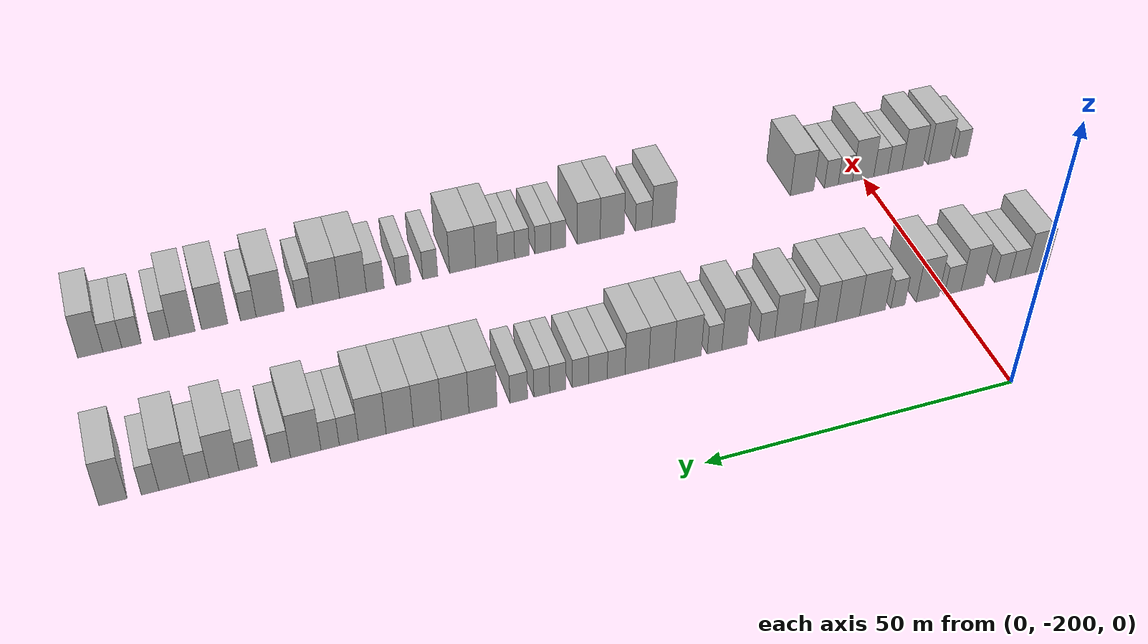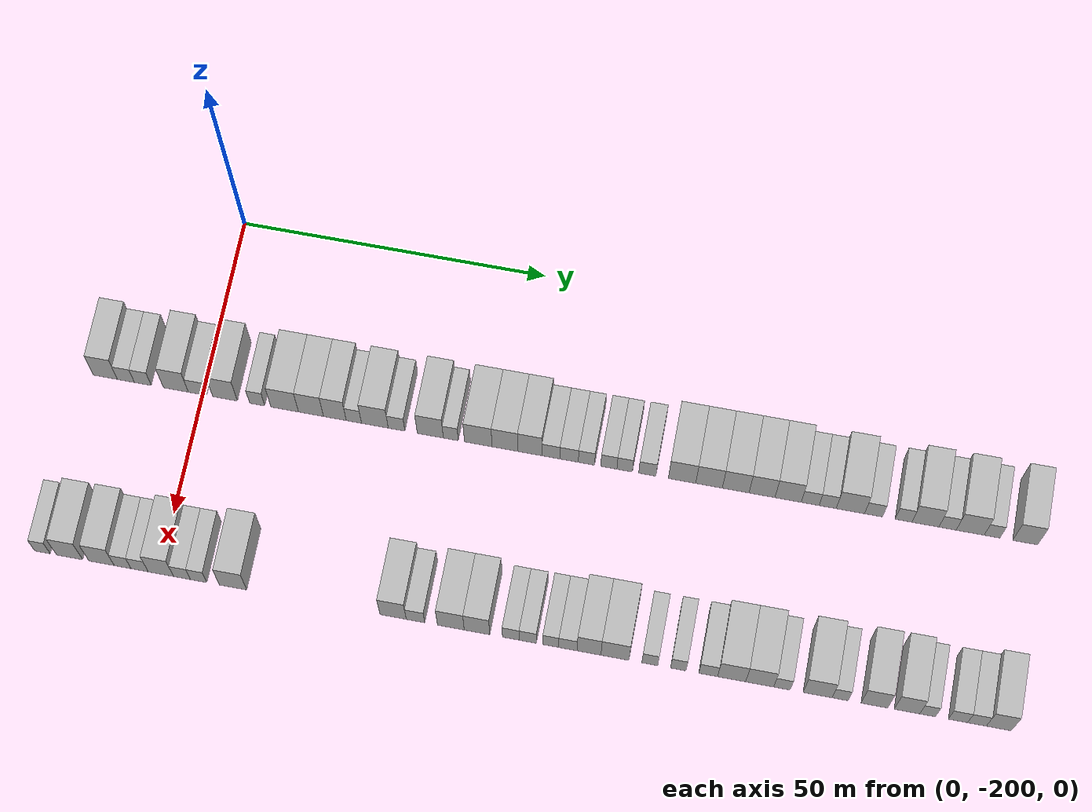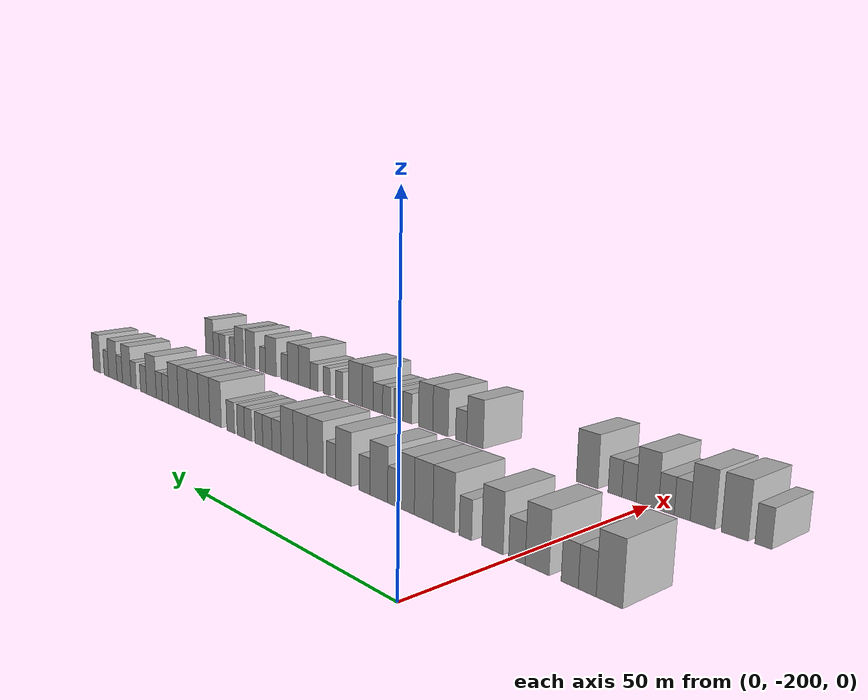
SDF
<sdf version="1.6">
 <world name="default">
  <model name="building_1">
   <static>1</static>
   <pose>25.0000 -216.0146 0 0.000000 0.000000 0.000000</pose>
   <link name="link">
    <pose>0 0 4.50 0 0 0</pose>
    <collision name="collision"><geometry><box><size>10.0000 3.9708 9.0000</size></box></geometry></collision>
    <visual name="visual">
     <cast_shadows>0</cast_shadows>
     <geometry><box><size>10.0000 3.9708 9.0000</size></box></geometry>
     <material>
      <script>
       <uri>model://HANNAS_wall/materials/scripts</uri>
       <uri>model://HANNAS_wall/materials/textures</uri>
       <name>vrc/HANNAS_wall</name>
      </script>
     </material>
    </visual>
   </link>
  </model>
  <model name="building_2">
   <static>1</static>
   <pose>25.0000 -212.6377 0 0.000000 0.000000 0.000000</pose>
   <link name="link">
    <pose>0 0 3.00 0 0 0</pose>
    <collision name="collision"><geometry><box><size>10.0000 2.7830 6.0000</size></box></geometry></collision>
    <visual name="visual">
     <cast_shadows>0</cast_shadows>
     <geometry><box><size>10.0000 2.7830 6.0000</size></box></geometry>
     <material>
      <script>
       <uri>model://HANNAS_wall/materials/scripts</uri>
       <uri>model://HANNAS_wall/materials/textures</uri>
       <name>vrc/HANNAS_wall</name>
      </script>
     </material>
    </visual>
   </link>
  </model>
  <model name="building_3">
   <static>1</static>
   <pose>25.0000 -209.8646 0 0.000000 0.000000 0.000000</pose>
   <link name="link">
    <pose>0 0 3.00 0 0 0</pose>
    <collision name="collision"><geometry><box><size>10.0000 2.7633 6.0000</size></box></geometry></collision>
    <visual name="visual">
     <cast_shadows>0</cast_shadows>
     <geometry><box><size>10.0000 2.7633 6.0000</size></box></geometry>
     <material>
      <script>
       <uri>model://HANNAS_wall/materials/scripts</uri>
       <uri>model://HANNAS_wall/materials/textures</uri>
       <name>vrc/HANNAS_wall</name>
      </script>
     </material>
    </visual>
   </link>
  </model>
  <model name="building_4">
   <static>1</static>
   <pose>25.0000 -204.4368 0 0.000000 0.000000 0.000000</pose>
   <link name="link">
    <pose>0 0 4.50 0 0 0</pose>
    <collision name="collision"><geometry><box><size>10.0000 4.0923 9.0000</size></box></geometry></collision>
    <visual name="visual">
     <cast_shadows>0</cast_shadows>
     <geometry><box><size>10.0000 4.0923 9.0000</size></box></geometry>
     <material>
      <script>
       <uri>model://HANNAS_wall/materials/scripts</uri>
       <uri>model://HANNAS_wall/materials/textures</uri>
       <name>vrc/HANNAS_wall</name>
      </script>
     </material>
    </visual>
   </link>
  </model>
  <model name="building_5">
   <static>1</static>
   <pose>25.0000 -200.8921 0 0.000000 0.000000 0.000000</pose>
   <link name="link">
    <pose>0 0 3.00 0 0 0</pose>
    <collision name="collision"><geometry><box><size>10.0000 2.9970 6.0000</size></box></geometry></collision>
    <visual name="visual">
     <cast_shadows>0</cast_shadows>
     <geometry><box><size>10.0000 2.9970 6.0000</size></box></geometry>
     <material>
      <script>
       <uri>model://HANNAS_wall/materials/scripts</uri>
       <uri>model://HANNAS_wall/materials/textures</uri>
       <name>vrc/HANNAS_wall</name>
      </script>
     </material>
    </visual>
   </link>
  </model>
  <model name="building_6">
   <static>1</static>
   <pose>25.0000 -196.3850 0 0.000000 0.000000 0.000000</pose>
   <link name="link">
    <pose>0 0 4.50 0 0 0</pose>
    <collision name="collision"><geometry><box><size>10.0000 4.0172 9.0000</size></box></geometry></collision>
    <visual name="visual">
     <cast_shadows>0</cast_shadows>
     <geometry><box><size>10.0000 4.0172 9.0000</size></box></geometry>
     <material>
      <script>
       <uri>model://HANNAS_wall/materials/scripts</uri>
       <uri>model://HANNAS_wall/materials/textures</uri>
       <name>vrc/HANNAS_wall</name>
      </script>
     </material>
    </visual>
   </link>
  </model>
  <model name="building_7">
   <static>1</static>
   <pose>25.0000 -191.1398 0 0.000000 0.000000 0.000000</pose>
   <link name="link">
    <pose>0 0 3.00 0 0 0</pose>
    <collision name="collision"><geometry><box><size>10.0000 2.4732 6.0000</size></box></geometry></collision>
    <visual name="visual">
     <cast_shadows>0</cast_shadows>
     <geometry><box><size>10.0000 2.4732 6.0000</size></box></geometry>
     <material>
      <script>
       <uri>model://HANNAS_wall/materials/scripts</uri>
       <uri>model://HANNAS_wall/materials/textures</uri>
       <name>vrc/HANNAS_wall</name>
      </script>
     </material>
    </visual>
   </link>
  </model>
  <model name="building_8">
   <static>1</static>
   <pose>25.0000 -186.6611 0 0.000000 0.000000 0.000000</pose>
   <link name="link">
    <pose>0 0 4.50 0 0 0</pose>
    <collision name="collision"><geometry><box><size>10.0000 4.4841 9.0000</size></box></geometry></collision>
    <visual name="visual">
     <cast_shadows>0</cast_shadows>
     <geometry><box><size>10.0000 4.4841 9.0000</size></box></geometry>
     <material>
      <script>
       <uri>model://HANNAS_wall/materials/scripts</uri>
       <uri>model://HANNAS_wall/materials/textures</uri>
       <name>vrc/HANNAS_wall</name>
      </script>
     </material>
    </visual>
   </link>
  </model>
  <model name="building_9">
   <static>1</static>
   <pose>25.0000 -182.3765 0 0.000000 0.000000 0.000000</pose>
   <link name="link">
    <pose>0 0 4.50 0 0 0</pose>
    <collision name="collision"><geometry><box><size>10.0000 4.0853 9.0000</size></box></geometry></collision>
    <visual name="visual">
     <cast_shadows>0</cast_shadows>
     <geometry><box><size>10.0000 4.0853 9.0000</size></box></geometry>
     <material>
      <script>
       <uri>model://HANNAS_wall/materials/scripts</uri>
       <uri>model://HANNAS_wall/materials/textures</uri>
       <name>vrc/HANNAS_wall</name>
      </script>
     </material>
    </visual>
   </link>
  </model>
  <model name="building_10">
   <static>1</static>
   <pose>25.0000 -178.4873 0 0.000000 0.000000 0.000000</pose>
   <link name="link">
    <pose>0 0 4.50 0 0 0</pose>
    <collision name="collision"><geometry><box><size>10.0000 3.6931 9.0000</size></box></geometry></collision>
    <visual name="visual">
     <cast_shadows>0</cast_shadows>
     <geometry><box><size>10.0000 3.6931 9.0000</size></box></geometry>
     <material>
      <script>
       <uri>model://HANNAS_wall/materials/scripts</uri>
       <uri>model://HANNAS_wall/materials/textures</uri>
       <name>vrc/HANNAS_wall</name>
      </script>
     </material>
    </visual>
   </link>
  </model>
  <model name="building_11">
   <static>1</static>
   <pose>25.0000 -175.4033 0 0.000000 0.000000 0.000000</pose>
   <link name="link">
    <pose>0 0 3.00 0 0 0</pose>
    <collision name="collision"><geometry><box><size>10.0000 2.4749 6.0000</size></box></geometry></collision>
    <visual name="visual">
     <cast_shadows>0</cast_shadows>
     <geometry><box><size>10.0000 2.4749 6.0000</size></box></geometry>
     <material>
      <script>
       <uri>model://HANNAS_wall/materials/scripts</uri>
       <uri>model://HANNAS_wall/materials/textures</uri>
       <name>vrc/HANNAS_wall</name>
      </script>
     </material>
    </visual>
   </link>
  </model>
  <model name="building_12">
   <static>1</static>
   <pose>25.0000 -171.9986 0 0.000000 0.000000 0.000000</pose>
   <link name="link">
    <pose>0 0 4.50 0 0 0</pose>
    <collision name="collision"><geometry><box><size>10.0000 4.3345 9.0000</size></box></geometry></collision>
    <visual name="visual">
     <cast_shadows>0</cast_shadows>
     <geometry><box><size>10.0000 4.3345 9.0000</size></box></geometry>
     <material>
      <script>
       <uri>model://HANNAS_wall/materials/scripts</uri>
       <uri>model://HANNAS_wall/materials/textures</uri>
       <name>vrc/HANNAS_wall</name>
      </script>
     </material>
    </visual>
   </link>
  </model>
  <model name="building_13">
   <static>1</static>
   <pose>25.0000 -168.4795 0 0.000000 0.000000 0.000000</pose>
   <link name="link">
    <pose>0 0 3.00 0 0 0</pose>
    <collision name="collision"><geometry><box><size>10.0000 2.7037 6.0000</size></box></geometry></collision>
    <visual name="visual">
     <cast_shadows>0</cast_shadows>
     <geometry><box><size>10.0000 2.7037 6.0000</size></box></geometry>
     <material>
      <script>
       <uri>model://HANNAS_wall/materials/scripts</uri>
       <uri>model://HANNAS_wall/materials/textures</uri>
       <name>vrc/HANNAS_wall</name>
      </script>
     </material>
    </visual>
   </link>
  </model>
  <model name="building_14">
   <static>1</static>
   <pose>25.0000 -163.0207 0 0.000000 0.000000 0.000000</pose>
   <link name="link">
    <pose>0 0 4.50 0 0 0</pose>
    <collision name="collision"><geometry><box><size>10.0000 4.2139 9.0000</size></box></geometry></collision>
    <visual name="visual">
     <cast_shadows>0</cast_shadows>
     <geometry><box><size>10.0000 4.2139 9.0000</size></box></geometry>
     <material>
      <script>
       <uri>model://HANNAS_wall/materials/scripts</uri>
       <uri>model://HANNAS_wall/materials/textures</uri>
       <name>vrc/HANNAS_wall</name>
      </script>
     </material>
    </visual>
   </link>
  </model>
  <model name="building_15">
   <static>1</static>
   <pose>25.0000 -159.7039 0 0.000000 0.000000 0.000000</pose>
   <link name="link">
    <pose>0 0 3.00 0 0 0</pose>
    <collision name="collision"><geometry><box><size>10.0000 2.4196 6.0000</size></box></geometry></collision>
    <visual name="visual">
     <cast_shadows>0</cast_shadows>
     <geometry><box><size>10.0000 2.4196 6.0000</size></box></geometry>
     <material>
      <script>
       <uri>model://HANNAS_wall/materials/scripts</uri>
       <uri>model://HANNAS_wall/materials/textures</uri>
       <name>vrc/HANNAS_wall</name>
      </script>
     </material>
    </visual>
   </link>
  </model>
  <model name="building_16">
   <static>1</static>
   <pose>25.0000 -155.2690 0 0.000000 0.000000 0.000000</pose>
   <link name="link">
    <pose>0 0 4.50 0 0 0</pose>
    <collision name="collision"><geometry><box><size>10.0000 4.4502 9.0000</size></box></geometry></collision>
    <visual name="visual">
     <cast_shadows>0</cast_shadows>
     <geometry><box><size>10.0000 4.4502 9.0000</size></box></geometry>
     <material>
      <script>
       <uri>model://HANNAS_wall/materials/scripts</uri>
       <uri>model://HANNAS_wall/materials/textures</uri>
       <name>vrc/HANNAS_wall</name>
      </script>
     </material>
    </visual>
   </link>
  </model>
  <model name="building_17">
   <static>1</static>
   <pose>25.0000 -150.9616 0 0.000000 0.000000 0.000000</pose>
   <link name="link">
    <pose>0 0 4.50 0 0 0</pose>
    <collision name="collision"><geometry><box><size>10.0000 4.1646 9.0000</size></box></geometry></collision>
    <visual name="visual">
     <cast_shadows>0</cast_shadows>
     <geometry><box><size>10.0000 4.1646 9.0000</size></box></geometry>
     <material>
      <script>
       <uri>model://HANNAS_wall/materials/scripts</uri>
       <uri>model://HANNAS_wall/materials/textures</uri>
       <name>vrc/HANNAS_wall</name>
      </script>
     </material>
    </visual>
   </link>
  </model>
  <model name="building_18">
   <static>1</static>
   <pose>25.0000 -146.9470 0 0.000000 0.000000 0.000000</pose>
   <link name="link">
    <pose>0 0 4.50 0 0 0</pose>
    <collision name="collision"><geometry><box><size>10.0000 3.8646 9.0000</size></box></geometry></collision>
    <visual name="visual">
     <cast_shadows>0</cast_shadows>
     <geometry><box><size>10.0000 3.8646 9.0000</size></box></geometry>
     <material>
      <script>
       <uri>model://HANNAS_wall/materials/scripts</uri>
       <uri>model://HANNAS_wall/materials/textures</uri>
       <name>vrc/HANNAS_wall</name>
      </script>
     </material>
    </visual>
   </link>
  </model>
  <model name="building_19">
   <static>1</static>
   <pose>25.0000 -143.5795 0 0.000000 0.000000 0.000000</pose>
   <link name="link">
    <pose>0 0 3.00 0 0 0</pose>
    <collision name="collision"><geometry><box><size>10.0000 2.8704 6.0000</size></box></geometry></collision>
    <visual name="visual">
     <cast_shadows>0</cast_shadows>
     <geometry><box><size>10.0000 2.8704 6.0000</size></box></geometry>
     <material>
      <script>
       <uri>model://HANNAS_wall/materials/scripts</uri>
       <uri>model://HANNAS_wall/materials/textures</uri>
       <name>vrc/HANNAS_wall</name>
      </script>
     </material>
    </visual>
   </link>
  </model>
  <model name="building_20">
   <static>1</static>
   <pose>25.0000 -140.6475 0 0.000000 0.000000 0.000000</pose>
   <link name="link">
    <pose>0 0 3.00 0 0 0</pose>
    <collision name="collision"><geometry><box><size>10.0000 2.9938 6.0000</size></box></geometry></collision>
    <visual name="visual">
     <cast_shadows>0</cast_shadows>
     <geometry><box><size>10.0000 2.9938 6.0000</size></box></geometry>
     <material>
      <script>
       <uri>model://HANNAS_wall/materials/scripts</uri>
       <uri>model://HANNAS_wall/materials/textures</uri>
       <name>vrc/HANNAS_wall</name>
      </script>
     </material>
    </visual>
   </link>
  </model>
  <model name="building_21">
   <static>1</static>
   <pose>25.0000 -137.8461 0 0.000000 0.000000 0.000000</pose>
   <link name="link">
    <pose>0 0 3.00 0 0 0</pose>
    <collision name="collision"><geometry><box><size>10.0000 2.6090 6.0000</size></box></geometry></collision>
    <visual name="visual">
     <cast_shadows>0</cast_shadows>
     <geometry><box><size>10.0000 2.6090 6.0000</size></box></geometry>
     <material>
      <script>
       <uri>model://HANNAS_wall/materials/scripts</uri>
       <uri>model://HANNAS_wall/materials/textures</uri>
       <name>vrc/HANNAS_wall</name>
      </script>
     </material>
    </visual>
   </link>
  </model>
  <model name="building_22">
   <static>1</static>
   <pose>25.0000 -134.2473 0 0.000000 0.000000 0.000000</pose>
   <link name="link">
    <pose>0 0 3.00 0 0 0</pose>
    <collision name="collision"><geometry><box><size>10.0000 2.5884 6.0000</size></box></geometry></collision>
    <visual name="visual">
     <cast_shadows>0</cast_shadows>
     <geometry><box><size>10.0000 2.5884 6.0000</size></box></geometry>
     <material>
      <script>
       <uri>model://HANNAS_wall/materials/scripts</uri>
       <uri>model://HANNAS_wall/materials/textures</uri>
       <name>vrc/HANNAS_wall</name>
      </script>
     </material>
    </visual>
   </link>
  </model>
  <model name="building_23">
   <static>1</static>
   <pose>25.0000 -131.7096 0 0.000000 0.000000 0.000000</pose>
   <link name="link">
    <pose>0 0 3.00 0 0 0</pose>
    <collision name="collision"><geometry><box><size>10.0000 2.4871 6.0000</size></box></geometry></collision>
    <visual name="visual">
     <cast_shadows>0</cast_shadows>
     <geometry><box><size>10.0000 2.4871 6.0000</size></box></geometry>
     <material>
      <script>
       <uri>model://HANNAS_wall/materials/scripts</uri>
       <uri>model://HANNAS_wall/materials/textures</uri>
       <name>vrc/HANNAS_wall</name>
      </script>
     </material>
    </visual>
   </link>
  </model>
  <model name="building_24">
   <static>1</static>
   <pose>25.0000 -128.0845 0 0.000000 0.000000 0.000000</pose>
   <link name="link">
    <pose>0 0 3.00 0 0 0</pose>
    <collision name="collision"><geometry><box><size>10.0000 2.7631 6.0000</size></box></geometry></collision>
    <visual name="visual">
     <cast_shadows>0</cast_shadows>
     <geometry><box><size>10.0000 2.7631 6.0000</size></box></geometry>
     <material>
      <script>
       <uri>model://HANNAS_wall/materials/scripts</uri>
       <uri>model://HANNAS_wall/materials/textures</uri>
       <name>vrc/HANNAS_wall</name>
      </script>
     </material>
    </visual>
   </link>
  </model>
  <model name="building_25">
   <static>1</static>
   <pose>25.0000 -122.5178 0 0.000000 0.000000 0.000000</pose>
   <link name="link">
    <pose>0 0 4.50 0 0 0</pose>
    <collision name="collision"><geometry><box><size>10.0000 4.3704 9.0000</size></box></geometry></collision>
    <visual name="visual">
     <cast_shadows>0</cast_shadows>
     <geometry><box><size>10.0000 4.3704 9.0000</size></box></geometry>
     <material>
      <script>
       <uri>model://HANNAS_wall/materials/scripts</uri>
       <uri>model://HANNAS_wall/materials/textures</uri>
       <name>vrc/HANNAS_wall</name>
      </script>
     </material>
    </visual>
   </link>
  </model>
  <model name="building_26">
   <static>1</static>
   <pose>25.0000 -118.2107 0 0.000000 0.000000 0.000000</pose>
   <link name="link">
    <pose>0 0 4.50 0 0 0</pose>
    <collision name="collision"><geometry><box><size>10.0000 4.2439 9.0000</size></box></geometry></collision>
    <visual name="visual">
     <cast_shadows>0</cast_shadows>
     <geometry><box><size>10.0000 4.2439 9.0000</size></box></geometry>
     <material>
      <script>
       <uri>model://HANNAS_wall/materials/scripts</uri>
       <uri>model://HANNAS_wall/materials/textures</uri>
       <name>vrc/HANNAS_wall</name>
      </script>
     </material>
    </visual>
   </link>
  </model>
  <model name="building_27">
   <static>1</static>
   <pose>25.0000 -113.9606 0 0.000000 0.000000 0.000000</pose>
   <link name="link">
    <pose>0 0 4.50 0 0 0</pose>
    <collision name="collision"><geometry><box><size>10.0000 4.2562 9.0000</size></box></geometry></collision>
    <visual name="visual">
     <cast_shadows>0</cast_shadows>
     <geometry><box><size>10.0000 4.2562 9.0000</size></box></geometry>
     <material>
      <script>
       <uri>model://HANNAS_wall/materials/scripts</uri>
       <uri>model://HANNAS_wall/materials/textures</uri>
       <name>vrc/HANNAS_wall</name>
      </script>
     </material>
    </visual>
   </link>
  </model>
  <model name="building_28">
   <static>1</static>
   <pose>25.0000 -109.7631 0 0.000000 0.000000 0.000000</pose>
   <link name="link">
    <pose>0 0 4.50 0 0 0</pose>
    <collision name="collision"><geometry><box><size>10.0000 4.1390 9.0000</size></box></geometry></collision>
    <visual name="visual">
     <cast_shadows>0</cast_shadows>
     <geometry><box><size>10.0000 4.1390 9.0000</size></box></geometry>
     <material>
      <script>
       <uri>model://HANNAS_wall/materials/scripts</uri>
       <uri>model://HANNAS_wall/materials/textures</uri>
       <name>vrc/HANNAS_wall</name>
      </script>
     </material>
    </visual>
   </link>
  </model>
  <model name="building_29">
   <static>1</static>
   <pose>25.0000 -105.6011 0 0.000000 0.000000 0.000000</pose>
   <link name="link">
    <pose>0 0 4.50 0 0 0</pose>
    <collision name="collision"><geometry><box><size>10.0000 4.1851 9.0000</size></box></geometry></collision>
    <visual name="visual">
     <cast_shadows>0</cast_shadows>
     <geometry><box><size>10.0000 4.1851 9.0000</size></box></geometry>
     <material>
      <script>
       <uri>model://HANNAS_wall/materials/scripts</uri>
       <uri>model://HANNAS_wall/materials/textures</uri>
       <name>vrc/HANNAS_wall</name>
      </script>
     </material>
    </visual>
   </link>
  </model>
  <model name="building_30">
   <static>1</static>
   <pose>25.0000 -102.0869 0 0.000000 0.000000 0.000000</pose>
   <link name="link">
    <pose>0 0 3.00 0 0 0</pose>
    <collision name="collision"><geometry><box><size>10.0000 2.8432 6.0000</size></box></geometry></collision>
    <visual name="visual">
     <cast_shadows>0</cast_shadows>
     <geometry><box><size>10.0000 2.8432 6.0000</size></box></geometry>
     <material>
      <script>
       <uri>model://HANNAS_wall/materials/scripts</uri>
       <uri>model://HANNAS_wall/materials/textures</uri>
       <name>vrc/HANNAS_wall</name>
      </script>
     </material>
    </visual>
   </link>
  </model>
  <model name="building_31">
   <static>1</static>
   <pose>25.0000 -99.3098 0 0.000000 0.000000 0.000000</pose>
   <link name="link">
    <pose>0 0 3.00 0 0 0</pose>
    <collision name="collision"><geometry><box><size>10.0000 2.7112 6.0000</size></box></geometry></collision>
    <visual name="visual">
     <cast_shadows>0</cast_shadows>
     <geometry><box><size>10.0000 2.7112 6.0000</size></box></geometry>
     <material>
      <script>
       <uri>model://HANNAS_wall/materials/scripts</uri>
       <uri>model://HANNAS_wall/materials/textures</uri>
       <name>vrc/HANNAS_wall</name>
      </script>
     </material>
    </visual>
   </link>
  </model>
  <model name="building_32">
   <static>1</static>
   <pose>25.0000 -95.7059 0 0.000000 0.000000 0.000000</pose>
   <link name="link">
    <pose>0 0 4.50 0 0 0</pose>
    <collision name="collision"><geometry><box><size>10.0000 4.4965 9.0000</size></box></geometry></collision>
    <visual name="visual">
     <cast_shadows>0</cast_shadows>
     <geometry><box><size>10.0000 4.4965 9.0000</size></box></geometry>
     <material>
      <script>
       <uri>model://HANNAS_wall/materials/scripts</uri>
       <uri>model://HANNAS_wall/materials/textures</uri>
       <name>vrc/HANNAS_wall</name>
      </script>
     </material>
    </visual>
   </link>
  </model>
  <model name="building_33">
   <static>1</static>
   <pose>25.0000 -92.0292 0 0.000000 0.000000 0.000000</pose>
   <link name="link">
    <pose>0 0 3.00 0 0 0</pose>
    <collision name="collision"><geometry><box><size>10.0000 2.8569 6.0000</size></box></geometry></collision>
    <visual name="visual">
     <cast_shadows>0</cast_shadows>
     <geometry><box><size>10.0000 2.8569 6.0000</size></box></geometry>
     <material>
      <script>
       <uri>model://HANNAS_wall/materials/scripts</uri>
       <uri>model://HANNAS_wall/materials/textures</uri>
       <name>vrc/HANNAS_wall</name>
      </script>
     </material>
    </visual>
   </link>
  </model>
  <model name="building_34">
   <static>1</static>
   <pose>25.0000 -87.2775 0 0.000000 0.000000 0.000000</pose>
   <link name="link">
    <pose>0 0 3.00 0 0 0</pose>
    <collision name="collision"><geometry><box><size>10.0000 2.6465 6.0000</size></box></geometry></collision>
    <visual name="visual">
     <cast_shadows>0</cast_shadows>
     <geometry><box><size>10.0000 2.6465 6.0000</size></box></geometry>
     <material>
      <script>
       <uri>model://HANNAS_wall/materials/scripts</uri>
       <uri>model://HANNAS_wall/materials/textures</uri>
       <name>vrc/HANNAS_wall</name>
      </script>
     </material>
    </visual>
   </link>
  </model>
  <model name="building_35">
   <static>1</static>
   <pose>25.0000 -83.8071 0 0.000000 0.000000 0.000000</pose>
   <link name="link">
    <pose>0 0 4.50 0 0 0</pose>
    <collision name="collision"><geometry><box><size>10.0000 4.2943 9.0000</size></box></geometry></collision>
    <visual name="visual">
     <cast_shadows>0</cast_shadows>
     <geometry><box><size>10.0000 4.2943 9.0000</size></box></geometry>
     <material>
      <script>
       <uri>model://HANNAS_wall/materials/scripts</uri>
       <uri>model://HANNAS_wall/materials/textures</uri>
       <name>vrc/HANNAS_wall</name>
      </script>
     </material>
    </visual>
   </link>
  </model>
  <model name="building_36">
   <static>1</static>
   <pose>25.0000 -80.2957 0 0.000000 0.000000 0.000000</pose>
   <link name="link">
    <pose>0 0 3.00 0 0 0</pose>
    <collision name="collision"><geometry><box><size>10.0000 2.7285 6.0000</size></box></geometry></collision>
    <visual name="visual">
     <cast_shadows>0</cast_shadows>
     <geometry><box><size>10.0000 2.7285 6.0000</size></box></geometry>
     <material>
      <script>
       <uri>model://HANNAS_wall/materials/scripts</uri>
       <uri>model://HANNAS_wall/materials/textures</uri>
       <name>vrc/HANNAS_wall</name>
      </script>
     </material>
    </visual>
   </link>
  </model>
  <model name="building_37">
   <static>1</static>
   <pose>25.0000 -76.7202 0 0.000000 0.000000 0.000000</pose>
   <link name="link">
    <pose>0 0 4.50 0 0 0</pose>
    <collision name="collision"><geometry><box><size>10.0000 4.4225 9.0000</size></box></geometry></collision>
    <visual name="visual">
     <cast_shadows>0</cast_shadows>
     <geometry><box><size>10.0000 4.4225 9.0000</size></box></geometry>
     <material>
      <script>
       <uri>model://HANNAS_wall/materials/scripts</uri>
       <uri>model://HANNAS_wall/materials/textures</uri>
       <name>vrc/HANNAS_wall</name>
      </script>
     </material>
    </visual>
   </link>
  </model>
  <model name="building_38">
   <static>1</static>
   <pose>25.0000 -73.2671 0 0.000000 0.000000 0.000000</pose>
   <link name="link">
    <pose>0 0 3.00 0 0 0</pose>
    <collision name="collision"><geometry><box><size>10.0000 2.4837 6.0000</size></box></geometry></collision>
    <visual name="visual">
     <cast_shadows>0</cast_shadows>
     <geometry><box><size>10.0000 2.4837 6.0000</size></box></geometry>
     <material>
      <script>
       <uri>model://HANNAS_wall/materials/scripts</uri>
       <uri>model://HANNAS_wall/materials/textures</uri>
       <name>vrc/HANNAS_wall</name>
      </script>
     </material>
    </visual>
   </link>
  </model>
  <model name="building_39">
   <static>1</static>
   <pose>25.0000 -68.0515 0 0.000000 0.000000 0.000000</pose>
   <link name="link">
    <pose>0 0 4.50 0 0 0</pose>
    <collision name="collision"><geometry><box><size>10.0000 3.9476 9.0000</size></box></geometry></collision>
    <visual name="visual">
     <cast_shadows>0</cast_shadows>
     <geometry><box><size>10.0000 3.9476 9.0000</size></box></geometry>
     <material>
      <script>
       <uri>model://HANNAS_wall/materials/scripts</uri>
       <uri>model://HANNAS_wall/materials/textures</uri>
       <name>vrc/HANNAS_wall</name>
      </script>
     </material>
    </visual>
   </link>
  </model>
  <model name="building_112">
   <static>1</static>
   <pose>55.0000 -218.7478 0 0.000000 0.000000 0.000000</pose>
   <link name="link">
    <pose>0 0 3.00 0 0 0</pose>
    <collision name="collision"><geometry><box><size>10.0000 2.5045 6.0000</size></box></geometry></collision>
    <visual name="visual">
     <cast_shadows>0</cast_shadows>
     <geometry><box><size>10.0000 2.5045 6.0000</size></box></geometry>
     <material>
      <script>
       <uri>model://HANNAS_wall/materials/scripts</uri>
       <uri>model://HANNAS_wall/materials/textures</uri>
       <name>vrc/HANNAS_wall</name>
      </script>
     </material>
    </visual>
   </link>
  </model>
  <model name="building_113">
   <static>1</static>
   <pose>55.0000 -214.3960 0 0.000000 0.000000 0.000000</pose>
   <link name="link">
    <pose>0 0 4.50 0 0 0</pose>
    <collision name="collision"><geometry><box><size>10.0000 4.1990 9.0000</size></box></geometry></collision>
    <visual name="visual">
     <cast_shadows>0</cast_shadows>
     <geometry><box><size>10.0000 4.1990 9.0000</size></box></geometry>
     <material>
      <script>
       <uri>model://HANNAS_wall/materials/scripts</uri>
       <uri>model://HANNAS_wall/materials/textures</uri>
       <name>vrc/HANNAS_wall</name>
      </script>
     </material>
    </visual>
   </link>
  </model>
  <model name="building_114">
   <static>1</static>
   <pose>55.0000 -209.2582 0 0.000000 0.000000 0.000000</pose>
   <link name="link">
    <pose>0 0 4.50 0 0 0</pose>
    <collision name="collision"><geometry><box><size>10.0000 4.0765 9.0000</size></box></geometry></collision>
    <visual name="visual">
     <cast_shadows>0</cast_shadows>
     <geometry><box><size>10.0000 4.0765 9.0000</size></box></geometry>
     <material>
      <script>
       <uri>model://HANNAS_wall/materials/scripts</uri>
       <uri>model://HANNAS_wall/materials/textures</uri>
       <name>vrc/HANNAS_wall</name>
      </script>
     </material>
    </visual>
   </link>
  </model>
  <model name="building_115">
   <static>1</static>
   <pose>55.0000 -205.8682 0 0.000000 0.000000 0.000000</pose>
   <link name="link">
    <pose>0 0 3.00 0 0 0</pose>
    <collision name="collision"><geometry><box><size>10.0000 2.7035 6.0000</size></box></geometry></collision>
    <visual name="visual">
     <cast_shadows>0</cast_shadows>
     <geometry><box><size>10.0000 2.7035 6.0000</size></box></geometry>
     <material>
      <script>
       <uri>model://HANNAS_wall/materials/scripts</uri>
       <uri>model://HANNAS_wall/materials/textures</uri>
       <name>vrc/HANNAS_wall</name>
      </script>
     </material>
    </visual>
   </link>
  </model>
  <model name="building_116">
   <static>1</static>
   <pose>55.0000 -203.1440 0 0.000000 0.000000 0.000000</pose>
   <link name="link">
    <pose>0 0 3.00 0 0 0</pose>
    <collision name="collision"><geometry><box><size>10.0000 2.7449 6.0000</size></box></geometry></collision>
    <visual name="visual">
     <cast_shadows>0</cast_shadows>
     <geometry><box><size>10.0000 2.7449 6.0000</size></box></geometry>
     <material>
      <script>
       <uri>model://HANNAS_wall/materials/scripts</uri>
       <uri>model://HANNAS_wall/materials/textures</uri>
       <name>vrc/HANNAS_wall</name>
      </script>
     </material>
    </visual>
   </link>
  </model>
  <model name="building_117">
   <static>1</static>
   <pose>55.0000 -199.7453 0 0.000000 0.000000 0.000000</pose>
   <link name="link">
    <pose>0 0 4.50 0 0 0</pose>
    <collision name="collision"><geometry><box><size>10.0000 4.0525 9.0000</size></box></geometry></collision>
    <visual name="visual">
     <cast_shadows>0</cast_shadows>
     <geometry><box><size>10.0000 4.0525 9.0000</size></box></geometry>
     <material>
      <script>
       <uri>model://HANNAS_wall/materials/scripts</uri>
       <uri>model://HANNAS_wall/materials/textures</uri>
       <name>vrc/HANNAS_wall</name>
      </script>
     </material>
    </visual>
   </link>
  </model>
  <model name="building_118">
   <static>1</static>
   <pose>55.0000 -196.3720 0 0.000000 0.000000 0.000000</pose>
   <link name="link">
    <pose>0 0 3.00 0 0 0</pose>
    <collision name="collision"><geometry><box><size>10.0000 2.6942 6.0000</size></box></geometry></collision>
    <visual name="visual">
     <cast_shadows>0</cast_shadows>
     <geometry><box><size>10.0000 2.6942 6.0000</size></box></geometry>
     <material>
      <script>
       <uri>model://HANNAS_wall/materials/scripts</uri>
       <uri>model://HANNAS_wall/materials/textures</uri>
       <name>vrc/HANNAS_wall</name>
      </script>
     </material>
    </visual>
   </link>
  </model>
  <model name="building_119">
   <static>1</static>
   <pose>55.0000 -193.7164 0 0.000000 0.000000 0.000000</pose>
   <link name="link">
    <pose>0 0 3.00 0 0 0</pose>
    <collision name="collision"><geometry><box><size>10.0000 2.6168 6.0000</size></box></geometry></collision>
    <visual name="visual">
     <cast_shadows>0</cast_shadows>
     <geometry><box><size>10.0000 2.6168 6.0000</size></box></geometry>
     <material>
      <script>
       <uri>model://HANNAS_wall/materials/scripts</uri>
       <uri>model://HANNAS_wall/materials/textures</uri>
       <name>vrc/HANNAS_wall</name>
      </script>
     </material>
    </visual>
   </link>
  </model>
  <model name="building_120">
   <static>1</static>
   <pose>55.0000 -188.2296 0 0.000000 0.000000 0.000000</pose>
   <link name="link">
    <pose>0 0 4.50 0 0 0</pose>
    <collision name="collision"><geometry><box><size>10.0000 4.3569 9.0000</size></box></geometry></collision>
    <visual name="visual">
     <cast_shadows>0</cast_shadows>
     <geometry><box><size>10.0000 4.3569 9.0000</size></box></geometry>
     <material>
      <script>
       <uri>model://HANNAS_wall/materials/scripts</uri>
       <uri>model://HANNAS_wall/materials/textures</uri>
       <name>vrc/HANNAS_wall</name>
      </script>
     </material>
    </visual>
   </link>
  </model>
  <model name="building_121">
   <static>1</static>
   <pose>55.0000 -162.8104 0 0.000000 0.000000 0.000000</pose>
   <link name="link">
    <pose>0 0 4.50 0 0 0</pose>
    <collision name="collision"><geometry><box><size>10.0000 4.1604 9.0000</size></box></geometry></collision>
    <visual name="visual">
     <cast_shadows>0</cast_shadows>
     <geometry><box><size>10.0000 4.1604 9.0000</size></box></geometry>
     <material>
      <script>
       <uri>model://HANNAS_wall/materials/scripts</uri>
       <uri>model://HANNAS_wall/materials/textures</uri>
       <name>vrc/HANNAS_wall</name>
      </script>
     </material>
    </visual>
   </link>
  </model>
  <model name="building_122">
   <static>1</static>
   <pose>55.0000 -159.2647 0 0.000000 0.000000 0.000000</pose>
   <link name="link">
    <pose>0 0 3.00 0 0 0</pose>
    <collision name="collision"><geometry><box><size>10.0000 2.9310 6.0000</size></box></geometry></collision>
    <visual name="visual">
     <cast_shadows>0</cast_shadows>
     <geometry><box><size>10.0000 2.9310 6.0000</size></box></geometry>
     <material>
      <script>
       <uri>model://HANNAS_wall/materials/scripts</uri>
       <uri>model://HANNAS_wall/materials/textures</uri>
       <name>vrc/HANNAS_wall</name>
      </script>
     </material>
    </visual>
   </link>
  </model>
  <model name="building_123">
   <static>1</static>
   <pose>55.0000 -153.6851 0 0.000000 0.000000 0.000000</pose>
   <link name="link">
    <pose>0 0 4.50 0 0 0</pose>
    <collision name="collision"><geometry><box><size>10.0000 4.2282 9.0000</size></box></geometry></collision>
    <visual name="visual">
     <cast_shadows>0</cast_shadows>
     <geometry><box><size>10.0000 4.2282 9.0000</size></box></geometry>
     <material>
      <script>
       <uri>model://HANNAS_wall/materials/scripts</uri>
       <uri>model://HANNAS_wall/materials/textures</uri>
       <name>vrc/HANNAS_wall</name>
      </script>
     </material>
    </visual>
   </link>
  </model>
  <model name="building_124">
   <static>1</static>
   <pose>55.0000 -149.5601 0 0.000000 0.000000 0.000000</pose>
   <link name="link">
    <pose>0 0 4.50 0 0 0</pose>
    <collision name="collision"><geometry><box><size>10.0000 4.0218 9.0000</size></box></geometry></collision>
    <visual name="visual">
     <cast_shadows>0</cast_shadows>
     <geometry><box><size>10.0000 4.0218 9.0000</size></box></geometry>
     <material>
      <script>
       <uri>model://HANNAS_wall/materials/scripts</uri>
       <uri>model://HANNAS_wall/materials/textures</uri>
       <name>vrc/HANNAS_wall</name>
      </script>
     </material>
    </visual>
   </link>
  </model>
  <model name="building_125">
   <static>1</static>
   <pose>55.0000 -144.2329 0 0.000000 0.000000 0.000000</pose>
   <link name="link">
    <pose>0 0 3.00 0 0 0</pose>
    <collision name="collision"><geometry><box><size>10.0000 2.6325 6.0000</size></box></geometry></collision>
    <visual name="visual">
     <cast_shadows>0</cast_shadows>
     <geometry><box><size>10.0000 2.6325 6.0000</size></box></geometry>
     <material>
      <script>
       <uri>model://HANNAS_wall/materials/scripts</uri>
       <uri>model://HANNAS_wall/materials/textures</uri>
       <name>vrc/HANNAS_wall</name>
      </script>
     </material>
    </visual>
   </link>
  </model>
  <model name="building_126">
   <static>1</static>
   <pose>55.0000 -141.5677 0 0.000000 0.000000 0.000000</pose>
   <link name="link">
    <pose>0 0 3.00 0 0 0</pose>
    <collision name="collision"><geometry><box><size>10.0000 2.6980 6.0000</size></box></geometry></collision>
    <visual name="visual">
     <cast_shadows>0</cast_shadows>
     <geometry><box><size>10.0000 2.6980 6.0000</size></box></geometry>
     <material>
      <script>
       <uri>model://HANNAS_wall/materials/scripts</uri>
       <uri>model://HANNAS_wall/materials/textures</uri>
       <name>vrc/HANNAS_wall</name>
      </script>
     </material>
    </visual>
   </link>
  </model>
  <model name="building_127">
   <static>1</static>
   <pose>55.0000 -137.9722 0 0.000000 0.000000 0.000000</pose>
   <link name="link">
    <pose>0 0 3.00 0 0 0</pose>
    <collision name="collision"><geometry><box><size>10.0000 2.4930 6.0000</size></box></geometry></collision>
    <visual name="visual">
     <cast_shadows>0</cast_shadows>
     <geometry><box><size>10.0000 2.4930 6.0000</size></box></geometry>
     <material>
      <script>
       <uri>model://HANNAS_wall/materials/scripts</uri>
       <uri>model://HANNAS_wall/materials/textures</uri>
       <name>vrc/HANNAS_wall</name>
      </script>
     </material>
    </visual>
   </link>
  </model>
  <model name="building_128">
   <static>1</static>
   <pose>55.0000 -135.2802 0 0.000000 0.000000 0.000000</pose>
   <link name="link">
    <pose>0 0 3.00 0 0 0</pose>
    <collision name="collision"><geometry><box><size>10.0000 2.8911 6.0000</size></box></geometry></collision>
    <visual name="visual">
     <cast_shadows>0</cast_shadows>
     <geometry><box><size>10.0000 2.8911 6.0000</size></box></geometry>
     <material>
      <script>
       <uri>model://HANNAS_wall/materials/scripts</uri>
       <uri>model://HANNAS_wall/materials/textures</uri>
       <name>vrc/HANNAS_wall</name>
      </script>
     </material>
    </visual>
   </link>
  </model>
  <model name="building_129">
   <static>1</static>
   <pose>55.0000 -131.9612 0 0.000000 0.000000 0.000000</pose>
   <link name="link">
    <pose>0 0 4.50 0 0 0</pose>
    <collision name="collision"><geometry><box><size>10.0000 3.7467 9.0000</size></box></geometry></collision>
    <visual name="visual">
     <cast_shadows>0</cast_shadows>
     <geometry><box><size>10.0000 3.7467 9.0000</size></box></geometry>
     <material>
      <script>
       <uri>model://HANNAS_wall/materials/scripts</uri>
       <uri>model://HANNAS_wall/materials/textures</uri>
       <name>vrc/HANNAS_wall</name>
      </script>
     </material>
    </visual>
   </link>
  </model>
  <model name="building_130">
   <static>1</static>
   <pose>55.0000 -127.8936 0 0.000000 0.000000 0.000000</pose>
   <link name="link">
    <pose>0 0 4.50 0 0 0</pose>
    <collision name="collision"><geometry><box><size>10.0000 4.3886 9.0000</size></box></geometry></collision>
    <visual name="visual">
     <cast_shadows>0</cast_shadows>
     <geometry><box><size>10.0000 4.3886 9.0000</size></box></geometry>
     <material>
      <script>
       <uri>model://HANNAS_wall/materials/scripts</uri>
       <uri>model://HANNAS_wall/materials/textures</uri>
       <name>vrc/HANNAS_wall</name>
      </script>
     </material>
    </visual>
   </link>
  </model>
  <model name="building_131">
   <static>1</static>
   <pose>55.0000 -122.4497 0 0.000000 0.000000 0.000000</pose>
   <link name="link">
    <pose>0 0 3.00 0 0 0</pose>
    <collision name="collision"><geometry><box><size>10.0000 2.4990 6.0000</size></box></geometry></collision>
    <visual name="visual">
     <cast_shadows>0</cast_shadows>
     <geometry><box><size>10.0000 2.4990 6.0000</size></box></geometry>
     <material>
      <script>
       <uri>model://HANNAS_wall/materials/scripts</uri>
       <uri>model://HANNAS_wall/materials/textures</uri>
       <name>vrc/HANNAS_wall</name>
      </script>
     </material>
    </visual>
   </link>
  </model>
  <model name="building_132">
   <static>1</static>
   <pose>55.0000 -117.9959 0 0.000000 0.000000 0.000000</pose>
   <link name="link">
    <pose>0 0 3.00 0 0 0</pose>
    <collision name="collision"><geometry><box><size>10.0000 2.4087 6.0000</size></box></geometry></collision>
    <visual name="visual">
     <cast_shadows>0</cast_shadows>
     <geometry><box><size>10.0000 2.4087 6.0000</size></box></geometry>
     <material>
      <script>
       <uri>model://HANNAS_wall/materials/scripts</uri>
       <uri>model://HANNAS_wall/materials/textures</uri>
       <name>vrc/HANNAS_wall</name>
      </script>
     </material>
    </visual>
   </link>
  </model>
  <model name="building_133">
   <static>1</static>
   <pose>55.0000 -113.3329 0 0.000000 0.000000 0.000000</pose>
   <link name="link">
    <pose>0 0 3.00 0 0 0</pose>
    <collision name="collision"><geometry><box><size>10.0000 2.9174 6.0000</size></box></geometry></collision>
    <visual name="visual">
     <cast_shadows>0</cast_shadows>
     <geometry><box><size>10.0000 2.9174 6.0000</size></box></geometry>
     <material>
      <script>
       <uri>model://HANNAS_wall/materials/scripts</uri>
       <uri>model://HANNAS_wall/materials/textures</uri>
       <name>vrc/HANNAS_wall</name>
      </script>
     </material>
    </visual>
   </link>
  </model>
  <model name="building_134">
   <static>1</static>
   <pose>55.0000 -109.6839 0 0.000000 0.000000 0.000000</pose>
   <link name="link">
    <pose>0 0 4.50 0 0 0</pose>
    <collision name="collision"><geometry><box><size>10.0000 4.3807 9.0000</size></box></geometry></collision>
    <visual name="visual">
     <cast_shadows>0</cast_shadows>
     <geometry><box><size>10.0000 4.3807 9.0000</size></box></geometry>
     <material>
      <script>
       <uri>model://HANNAS_wall/materials/scripts</uri>
       <uri>model://HANNAS_wall/materials/textures</uri>
       <name>vrc/HANNAS_wall</name>
      </script>
     </material>
    </visual>
   </link>
  </model>
  <model name="building_135">
   <static>1</static>
   <pose>55.0000 -105.3148 0 0.000000 0.000000 0.000000</pose>
   <link name="link">
    <pose>0 0 4.50 0 0 0</pose>
    <collision name="collision"><geometry><box><size>10.0000 4.3575 9.0000</size></box></geometry></collision>
    <visual name="visual">
     <cast_shadows>0</cast_shadows>
     <geometry><box><size>10.0000 4.3575 9.0000</size></box></geometry>
     <material>
      <script>
       <uri>model://HANNAS_wall/materials/scripts</uri>
       <uri>model://HANNAS_wall/materials/textures</uri>
       <name>vrc/HANNAS_wall</name>
      </script>
     </material>
    </visual>
   </link>
  </model>
  <model name="building_136">
   <static>1</static>
   <pose>55.0000 -101.8447 0 0.000000 0.000000 0.000000</pose>
   <link name="link">
    <pose>0 0 3.00 0 0 0</pose>
    <collision name="collision"><geometry><box><size>10.0000 2.5826 6.0000</size></box></geometry></collision>
    <visual name="visual">
     <cast_shadows>0</cast_shadows>
     <geometry><box><size>10.0000 2.5826 6.0000</size></box></geometry>
     <material>
      <script>
       <uri>model://HANNAS_wall/materials/scripts</uri>
       <uri>model://HANNAS_wall/materials/textures</uri>
       <name>vrc/HANNAS_wall</name>
      </script>
     </material>
    </visual>
   </link>
  </model>
  <model name="building_137">
   <static>1</static>
   <pose>55.0000 -96.3064 0 0.000000 0.000000 0.000000</pose>
   <link name="link">
    <pose>0 0 4.50 0 0 0</pose>
    <collision name="collision"><geometry><box><size>10.0000 4.4940 9.0000</size></box></geometry></collision>
    <visual name="visual">
     <cast_shadows>0</cast_shadows>
     <geometry><box><size>10.0000 4.4940 9.0000</size></box></geometry>
     <material>
      <script>
       <uri>model://HANNAS_wall/materials/scripts</uri>
       <uri>model://HANNAS_wall/materials/textures</uri>
       <name>vrc/HANNAS_wall</name>
      </script>
     </material>
    </visual>
   </link>
  </model>
  <model name="building_138">
   <static>1</static>
   <pose>55.0000 -92.8170 0 0.000000 0.000000 0.000000</pose>
   <link name="link">
    <pose>0 0 3.00 0 0 0</pose>
    <collision name="collision"><geometry><box><size>10.0000 2.4848 6.0000</size></box></geometry></collision>
    <visual name="visual">
     <cast_shadows>0</cast_shadows>
     <geometry><box><size>10.0000 2.4848 6.0000</size></box></geometry>
     <material>
      <script>
       <uri>model://HANNAS_wall/materials/scripts</uri>
       <uri>model://HANNAS_wall/materials/textures</uri>
       <name>vrc/HANNAS_wall</name>
      </script>
     </material>
    </visual>
   </link>
  </model>
  <model name="building_139">
   <static>1</static>
   <pose>55.0000 -87.5115 0 0.000000 0.000000 0.000000</pose>
   <link name="link">
    <pose>0 0 4.50 0 0 0</pose>
    <collision name="collision"><geometry><box><size>10.0000 4.1261 9.0000</size></box></geometry></collision>
    <visual name="visual">
     <cast_shadows>0</cast_shadows>
     <geometry><box><size>10.0000 4.1261 9.0000</size></box></geometry>
     <material>
      <script>
       <uri>model://HANNAS_wall/materials/scripts</uri>
       <uri>model://HANNAS_wall/materials/textures</uri>
       <name>vrc/HANNAS_wall</name>
      </script>
     </material>
    </visual>
   </link>
  </model>
  <model name="building_140">
   <static>1</static>
   <pose>55.0000 -82.4734 0 0.000000 0.000000 0.000000</pose>
   <link name="link">
    <pose>0 0 4.50 0 0 0</pose>
    <collision name="collision"><geometry><box><size>10.0000 3.9501 9.0000</size></box></geometry></collision>
    <visual name="visual">
     <cast_shadows>0</cast_shadows>
     <geometry><box><size>10.0000 3.9501 9.0000</size></box></geometry>
     <material>
      <script>
       <uri>model://HANNAS_wall/materials/scripts</uri>
       <uri>model://HANNAS_wall/materials/textures</uri>
       <name>vrc/HANNAS_wall</name>
      </script>
     </material>
    </visual>
   </link>
  </model>
  <model name="building_141">
   <static>1</static>
   <pose>55.0000 -79.2882 0 0.000000 0.000000 0.000000</pose>
   <link name="link">
    <pose>0 0 3.00 0 0 0</pose>
    <collision name="collision"><geometry><box><size>10.0000 2.4205 6.0000</size></box></geometry></collision>
    <visual name="visual">
     <cast_shadows>0</cast_shadows>
     <geometry><box><size>10.0000 2.4205 6.0000</size></box></geometry>
     <material>
      <script>
       <uri>model://HANNAS_wall/materials/scripts</uri>
       <uri>model://HANNAS_wall/materials/textures</uri>
       <name>vrc/HANNAS_wall</name>
      </script>
     </material>
    </visual>
   </link>
  </model>
  <model name="building_142">
   <static>1</static>
   <pose>55.0000 -74.5962 0 0.000000 0.000000 0.000000</pose>
   <link name="link">
    <pose>0 0 3.00 0 0 0</pose>
    <collision name="collision"><geometry><box><size>10.0000 2.9635 6.0000</size></box></geometry></collision>
    <visual name="visual">
     <cast_shadows>0</cast_shadows>
     <geometry><box><size>10.0000 2.9635 6.0000</size></box></geometry>
     <material>
      <script>
       <uri>model://HANNAS_wall/materials/scripts</uri>
       <uri>model://HANNAS_wall/materials/textures</uri>
       <name>vrc/HANNAS_wall</name>
      </script>
     </material>
    </visual>
   </link>
  </model>
  <model name="building_143">
   <static>1</static>
   <pose>55.0000 -71.6714 0 0.000000 0.000000 0.000000</pose>
   <link name="link">
    <pose>0 0 3.00 0 0 0</pose>
    <collision name="collision"><geometry><box><size>10.0000 2.8862 6.0000</size></box></geometry></collision>
    <visual name="visual">
     <cast_shadows>0</cast_shadows>
     <geometry><box><size>10.0000 2.8862 6.0000</size></box></geometry>
     <material>
      <script>
       <uri>model://HANNAS_wall/materials/scripts</uri>
       <uri>model://HANNAS_wall/materials/textures</uri>
       <name>vrc/HANNAS_wall</name>
      </script>
     </material>
    </visual>
   </link>
  </model>
  <model name="building_144">
   <static>1</static>
   <pose>55.0000 -68.3085 0 0.000000 0.000000 0.000000</pose>
   <link name="link">
    <pose>0 0 4.50 0 0 0</pose>
    <collision name="collision"><geometry><box><size>10.0000 3.8395 9.0000</size></box></geometry></collision>
    <visual name="visual">
     <cast_shadows>0</cast_shadows>
     <geometry><box><size>10.0000 3.8395 9.0000</size></box></geometry>
     <material>
      <script>
       <uri>model://HANNAS_wall/materials/scripts</uri>
       <uri>model://HANNAS_wall/materials/textures</uri>
       <name>vrc/HANNAS_wall</name>
      </script>
     </material>
    </visual>
   </link>
  </model>
 </world>
</sdf>
